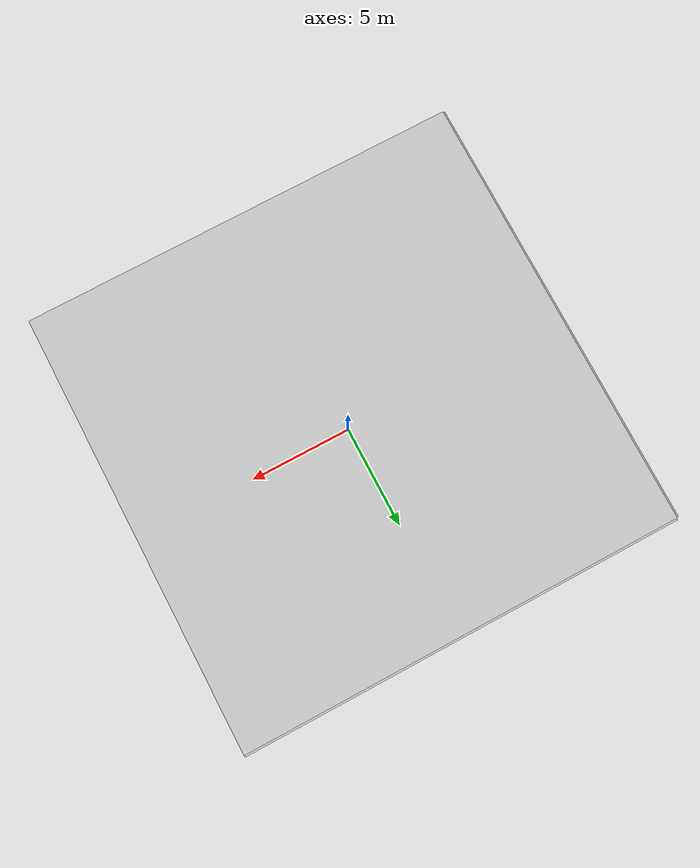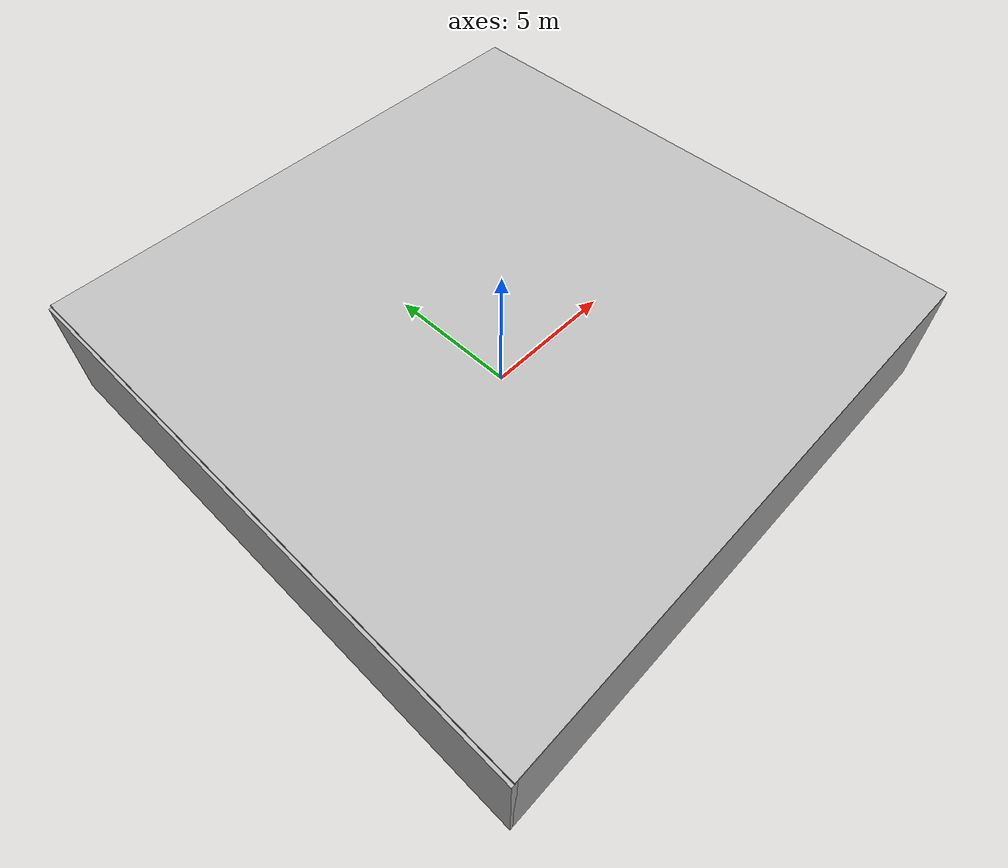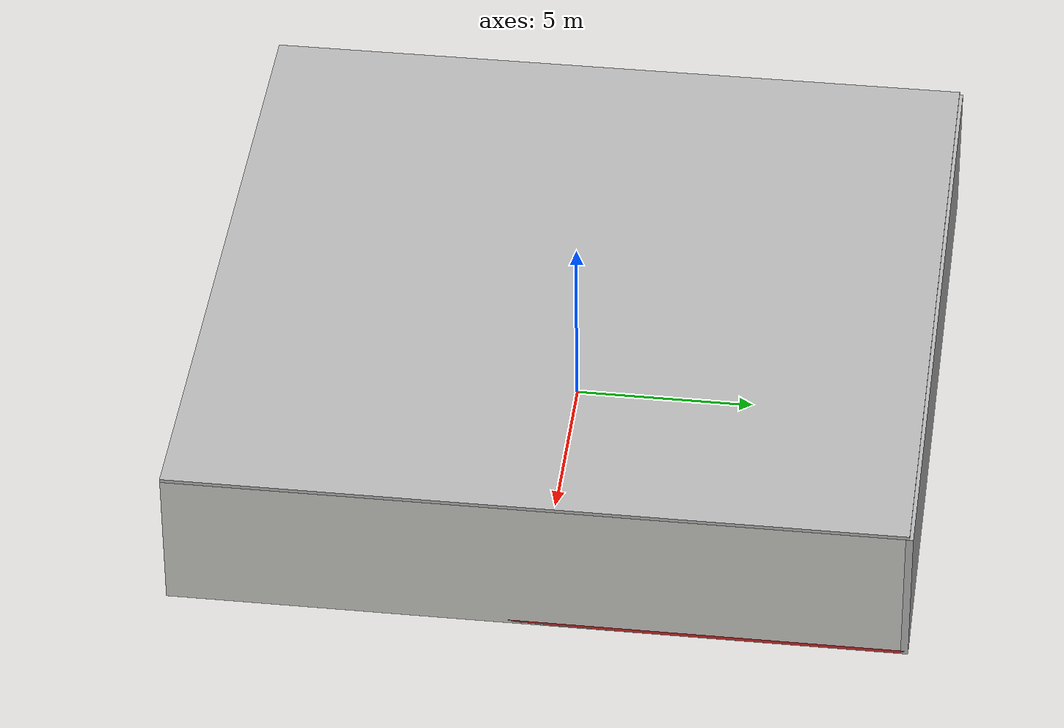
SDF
<sdf version="1.4">
 <world name="default">
  <physics type="ode">
   <max_step_size>0.001</max_step_size>
   <real_time_factor>1</real_time_factor>
   <real_time_update_rate>1000</real_time_update_rate>
   <gravity>0 0 -9.8</gravity>
  </physics>
  <scene><ambient>0.4 0.4 0.4 1</ambient><background>0.7 0.7 0.7 1</background><shadows>1</shadows></scene>
  <model name="Surrounding">
   <static>1</static>
   <link name="Ceiling">
    <collision name="Ceiling_Collision"><geometry><box><size>20 20 0.1</size></box></geometry></collision>
    <visual name="Ceiling_Visual">
     <geometry><box><size>20 20 0.1</size></box></geometry>
     <material>
      <script><uri>file://media/materials/scripts/gazebo.material</uri><name>Gazebo/Pioneer2Body</name></script>
     </material>
    </visual>
    <pose>0 0 4.05 0 0 0</pose>
   </link>
   <link name="Wall_South">
    <collision name="Wall_South_Collision">
     <geometry><box><size>20 0 4</size></box></geometry>
     <pose>0 0 2 0 -0 0</pose>
    </collision>
    <visual name="Wall_South_Visual">
     <pose>0 0 2 0 -0 0</pose>
     <geometry><box><size>20 0 4</size></box></geometry>
     <material>
      <script><uri>file://media/materials/scripts/gazebo.material</uri><name>Gazebo/Pioneer2Body</name></script>
     </material>
    </visual>
    <velocity_decay><linear>0</linear><angular>0</angular></velocity_decay>
    <pose>0 -10 0 0 -0 0</pose>
   </link>
   <link name="Wall_East">
    <collision name="Wall_21_Collision">
     <geometry><box><size>20 0 4</size></box></geometry>
     <pose>0 0 2 0 -0 0</pose>
    </collision>
    <visual name="Wall_21_Visual">
     <pose>0 0 2 0 -0 0</pose>
     <geometry><box><size>20 0 4</size></box></geometry>
     <material>
      <script><uri>file://media/materials/scripts/gazebo.material</uri><name>Gazebo/CeilingTiled</name></script>
     </material>
    </visual>
    <velocity_decay><linear>0</linear><angular>0</angular></velocity_decay>
    <pose>10 0 0 0 -0 1.5708</pose>
   </link>
   <link name="Wall_North">
    <collision name="Wall_22_Collision">
     <geometry><box><size>20 0.2 4</size></box></geometry>
     <pose>0 0 2 0 -0 0</pose>
    </collision>
    <visual name="Wall_22_Visual">
     <pose>0 0 2 0 -0 0</pose>
     <geometry><box><size>20 0.2 4</size></box></geometry>
     <material>
      <script><uri>file://media/materials/scripts/gazebo.material</uri><name>Gazebo/LightOn</name></script>
     </material>
    </visual>
    <velocity_decay><linear>0</linear><angular>0</angular></velocity_decay>
    <pose>0 10 0 0 -0 0</pose>
   </link>
   <link name="Wall_West">
    <collision name="Wall_23_Collision">
     <geometry><box><size>20 0.2 4</size></box></geometry>
     <pose>0 0 2 0 -0 0</pose>
    </collision>
    <visual name="Wall_23_Visual">
     <pose>0 0 2 0 -0 0</pose>
     <geometry><box><size>20 0.2 4</size></box></geometry>
     <material>
      <script><uri>file://media/materials/scripts/gazebo.material</uri><name>Gazebo/PioneerBody</name></script>
     </material>
    </visual>
    <velocity_decay><linear>0</linear><angular>0</angular></velocity_decay>
    <pose>-10 0 0 0 0 -1.5708</pose>
   </link>
   <link name="Ground_link">
    <collision name="collision">
     <pose>0 0 .05 0 -0 0</pose>
     <geometry><box><size>20 20 0.1</size></box></geometry>
    </collision>
    <visual name="visual">
     <pose>0 0 .05 0 -0 0</pose>
     <geometry><box><size>20 20 0.1</size></box></geometry>
     <material>
      <script><uri>file://media/materials/scripts/gazebo.material</uri><name>Gazebo/Red</name></script>
     </material>
    </visual>
   </link>
   <static>1</static>
  </model>
  <spherical_coordinates>
   <surface_model>EARTH_WGS84</surface_model>
   <latitude_deg>0</latitude_deg>
   <longitude_deg>0</longitude_deg>
   <elevation>0</elevation>
   <heading_deg>0</heading_deg>
  </spherical_coordinates>
  <light name="lightball_0" type="diffuse">
   <diffuse>0.8 0.8 0.8 1</diffuse>
   <specular>0.2 0.2 0.2 1</specular>
   <attenuation>
    <range>100</range>
    <constant>0.7</constant>
    <linear>0.01</linear>
    <quadratic>0.001</quadratic>
   </attenuation>
   <direction>-0.5 0.1 -0.9</direction>
   <pose>9.37556885891 2.72725581687 2.49936458065 0 0 0</pose>
  </light>
  <light name="lightball_1" type="diffuse">
   <diffuse>0.8 0.8 0.8 1</diffuse>
   <specular>0.2 0.2 0.2 1</specular>
   <attenuation>
    <range>100</range>
    <constant>0.7</constant>
    <linear>0.01</linear>
    <quadratic>0.001</quadratic>
   </attenuation>
   <direction>-0.5 0.1 -0.9</direction>
   <pose>1.04847317844 -6.6885657767 3.539555941 0 0 0</pose>
  </light>
  <light name="lightball_2" type="diffuse">
   <diffuse>0.8 0.8 0.8 1</diffuse>
   <specular>0.2 0.2 0.2 1</specular>
   <attenuation>
    <range>100</range>
    <constant>0.7</constant>
    <linear>0.01</linear>
    <quadratic>0.001</quadratic>
   </attenuation>
   <direction>-0.5 0.1 -0.9</direction>
   <pose>-4.84535614526 -1.21476844633 2.64836508094 0 0 0</pose>
  </light>
  <light name="lightball_3" type="diffuse">
   <diffuse>0.8 0.8 0.8 1</diffuse>
   <specular>0.2 0.2 0.2 1</specular>
   <attenuation>
    <range>100</range>
    <constant>0.7</constant>
    <linear>0.01</linear>
    <quadratic>0.001</quadratic>
   </attenuation>
   <direction>-0.5 0.1 -0.9</direction>
   <pose>-7.56021420672 5.28437620456 3.5823584887 0 0 0</pose>
  </light>
  <light name="lightball_4" type="diffuse">
   <diffuse>0.8 0.8 0.8 1</diffuse>
   <specular>0.2 0.2 0.2 1</specular>
   <attenuation>
    <range>100</range>
    <constant>0.7</constant>
    <linear>0.01</linear>
    <quadratic>0.001</quadratic>
   </attenuation>
   <direction>-0.5 0.1 -0.9</direction>
   <pose>6.1325870108 -3.75595066284 1.40995935483 0 0 0</pose>
  </light>
  <include>
   <uri>model://textured_shapes</uri>
   <pose>-4.17675519712 4.4362992947 0 0 0 1.24564569574</pose>
  </include>
  <include><uri>model://table</uri><pose>-4.28891772263 7.5078523395 0 0 0 0.238057569699</pose></include>
  <include><uri>model://table</uri><pose>6.83667367199 -6.9134050669 0 0 0 3.09896348536</pose></include>
 </world>
</sdf>

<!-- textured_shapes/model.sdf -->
<sdf version="1.6">
  <model name="textured_shapes">
    <pose>0 0 0.5 0 0 0</pose>
    <link name="box">
      <pose>0 -1.5 0 0 0 0</pose>
      <collision name="collision">
        <geometry>
          <box>
            <size>1 1 1</size>
          </box>
        </geometry>
      </collision>
      <visual name="visual">
        <geometry>
          <box>
            <size>1 1 1</size>
          </box>
        </geometry>
        <material>
          <script>
            <uri>model://../model_source/models/textured_shapes/materials/scripts</uri>
            <uri>model://../model_source/models/textured_shapes/materials/textures</uri>
            <name>TexturedShape/Squares</name>
          </script>
        </material>
      </visual>
    </link>
    <link name="sphere">
      <collision name="collision">
        <geometry>
          <sphere>
            <radius>0.5</radius>
          </sphere>
        </geometry>
      </collision>
      <visual name="visual">
        <geometry>
          <sphere>
            <radius>0.5</radius>
          </sphere>
        </geometry>
        <material>
          <script>
            <uri>model://../model_source/models/textured_shapes/materials/scripts</uri>
            <uri>model://../model_source/models/textured_shapes/materials/textures</uri>
            <name>TexturedShape/Squares</name>
          </script>
        </material>
      </visual>
    </link>
    <link name="cylinder">
      <pose>0 1.5 0 0 0 0</pose>
      <collision name="collision">
        <geometry>
          <cylinder>
            <radius>0.5</radius>
            <length>1</length>
          </cylinder>
        </geometry>
      </collision>
      <visual name="visual">
        <geometry>
          <cylinder>
            <radius>0.5</radius>
            <length>1</length>
          </cylinder>
        </geometry>
        <material>
          <script>
            <uri>model://../model_source/models/textured_shapes/materials/scripts</uri>
            <uri>model://../model_source/models/textured_shapes/materials/textures</uri>
            <name>TexturedShape/Squares</name>
          </script>
        </material>
      </visual>
    </link>
  </model>
</sdf>

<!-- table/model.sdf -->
<sdf version="1.5">
  <model name="table">
    <static>true</static>
    <link name="link">
      <collision name="surface">
        <pose>0 0 1.0 0 0 0</pose>
        <geometry>
          <box>
            <size>1.5 0.8 0.03</size>
          </box>
        </geometry>
        <surface>
          <friction>
            <ode>
              <mu>0.6</mu>
              <mu2>0.6</mu2>
            </ode>
          </friction>
        </surface>
      </collision>
      <visual name="visual1">
        <pose>0 0 1.0 0 0 0</pose>
        <geometry>
          <box>
            <size>1.5 0.8 0.03</size>
          </box>
        </geometry>
        <material>
          <script>
            <uri>model://media/materials/scripts/gazebo.material</uri>
            <name>Gazebo/Wood</name>
          </script>
        </material>
      </visual>
      <collision name="front_left_leg">
        <pose>0.68 0.38 0.5 0 0 0</pose>
        <geometry>
          <cylinder>
            <radius>0.02</radius>
            <length>1.0</length>
          </cylinder>
        </geometry>
      </collision>
      <visual name="front_left_leg">
        <pose>0.68 0.38 0.5 0 0 0</pose>
        <geometry>
          <cylinder>
            <radius>0.02</radius>
            <length>1.0</length>
          </cylinder>
        </geometry>
        <material>
          <script>
            <uri>model://media/materials/scripts/gazebo.material</uri>
            <name>Gazebo/Grey</name>
          </script>
        </material>
      </visual>
      <collision name="front_right_leg">
        <pose>0.68 -0.38 0.5 0 0 0</pose>
        <geometry>
          <cylinder>
            <radius>0.02</radius>
            <length>1.0</length>
          </cylinder>
        </geometry>
      </collision>
      <visual name="front_right_leg">
        <pose>0.68 -0.38 0.5 0 0 0</pose>
        <geometry>
          <cylinder>
            <radius>0.02</radius>
            <length>1.0</length>
          </cylinder>
        </geometry>
        <material>
          <script>
            <uri>model://media/materials/scripts/gazebo.material</uri>
            <name>Gazebo/Grey</name>
          </script>
        </material>
      </visual>
      <collision name="back_right_leg">
        <pose>-0.68 -0.38 0.5 0 0 0</pose>
        <geometry>
          <cylinder>
            <radius>0.02</radius>
            <length>1.0</length>
          </cylinder>
        </geometry>
      </collision>
      <visual name="back_right_leg">
        <pose>-0.68 -0.38 0.5 0 0 0</pose>
        <geometry>
          <cylinder>
            <radius>0.02</radius>
            <length>1.0</length>
          </cylinder>
        </geometry>
        <material>
          <script>
            <uri>model://media/materials/scripts/gazebo.material</uri>
            <name>Gazebo/Grey</name>
          </script>
        </material>
      </visual>
      <collision name="back_left_leg">
        <pose>-0.68 0.38 0.5 0 0 0</pose>
        <geometry>
          <cylinder>
            <radius>0.02</radius>
            <length>1.0</length>
          </cylinder>
        </geometry>
      </collision>
      <visual name="back_left_leg">
        <pose>-0.68 0.38 0.5 0 0 0</pose>
        <geometry>
          <cylinder>
            <radius>0.02</radius>
            <length>1.0</length>
          </cylinder>
        </geometry>
        <material>
          <script>
            <uri>model://media/materials/scripts/gazebo.material</uri>
            <name>Gazebo/Grey</name>
          </script>
        </material>
      </visual>
    </link>
  </model>
</sdf>
